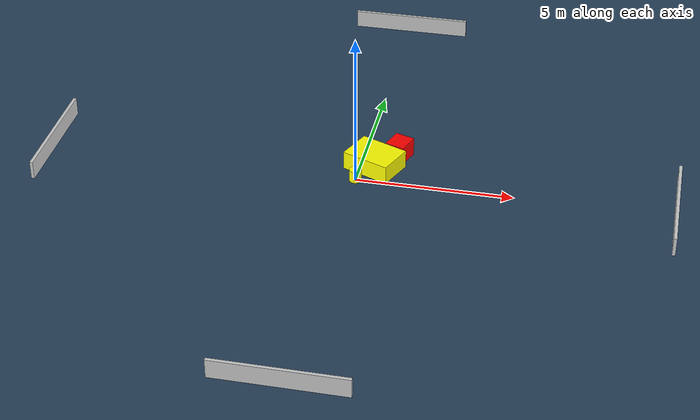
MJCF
<?xml version="1.0" ?>
<mujoco model="generated_environment">
  <option timestep="0.01" integrator="RK4" cone="elliptic"/>
  <default>
    <geom density="1"/>
  </default>
  <asset>
    <texture builtin="gradient" height="3072" name="skybox" rgb1="0.3 0.5 0.7" rgb2="0 0 0" type="skybox" width="512"/>
    <texture builtin="checker" height="300" name="groundplane" rgb1="0.2 0.3 0.4" rgb2="0.1 0.2 0.3" type="2d" width="300"/>
    <material name="groundplane" reflectance="0.2" texrepeat="5 5" texture="groundplane"/>
  </asset>
  <worldbody>
    <light dir="0 0 -1" directional="true" pos="0 0 1.5"/>
    <geom condim="3" friction="0.5 0.005 0.001" material="groundplane" name="floor" pos="0 0 0" size="0 0 0.05" type="plane"/>
    <body name="walls">
      <geom name="wall_1" condim="4" pos="-10.0 0.0 0.3" rgba="0.800000011920929 0.800000011920929 0.800000011920929 1.0" size="0.05 2.0 0.3" type="box"/>
      <geom name="wall_2" condim="4" pos="10.0 0.0 0.3" rgba="0.800000011920929 0.800000011920929 0.800000011920929 1.0" size="0.05 2.0 0.3" type="box"/>
      <geom name="wall_3" condim="4" pos="0.0 -10.0 0.3" rgba="0.800000011920929 0.800000011920929 0.800000011920929 1.0" size="2.0 0.05 0.3" type="box"/>
      <geom name="wall_4" condim="4" pos="0.0 10.0 0.3" rgba="0.800000011920929 0.800000011920929 0.800000011920929 1.0" size="2.0 0.05 0.3" type="box"/>
    </body>
    <body name="robot">
      <joint name="joint_x" type="slide" pos="0 0 0" axis="1 0 0"/>
      <joint name="joint_y" type="slide" pos="0 0 0" axis="0 1 0"/>
      <geom name="robot" type="cylinder" pos="0.0 0.0 0.2" size="0.2 0.2 0.0" mass="5.0" friction="1.0 0.005 0.0001" condim="4" rgba="1.0 1.0 0.0 1.0"/>
    </body>
    <body name="obstacle_1_movable">
      <geom name="obstacle_1_movable" condim="4" pos="0.45181148671738397 0.8232126217000737 0.3" euler="0 0 337.42244541304416" friction="0.0 0.005 0.001" rgba="1.0 1.0 0.0 1.0" size="0.7996498432068901 0.5860413956282551 0.3" type="box" mass="0.1"/>
      <joint type="free"/>
    </body>
    <body name="obstacle_2_static">
      <geom name="obstacle_2_static" condim="4" pos="1.1165397072504626 1.6129048322922965 0.3" euler="0 0 160.5366226608379" friction="0.0 0.005 0.001" rgba="1.0 0.0 0.0 1.0" size="0.3202270588491356 0.35617373225023885 0.3" type="box"/>
    </body>
  </worldbody>
  <actuator>
    <motor name="actuator_x" joint="joint_x" gear="1" ctrlrange="-1 1"/>
    <motor name="actuator_y" joint="joint_y" gear="1" ctrlrange="-1 1"/>
  </actuator>
</mujoco>
